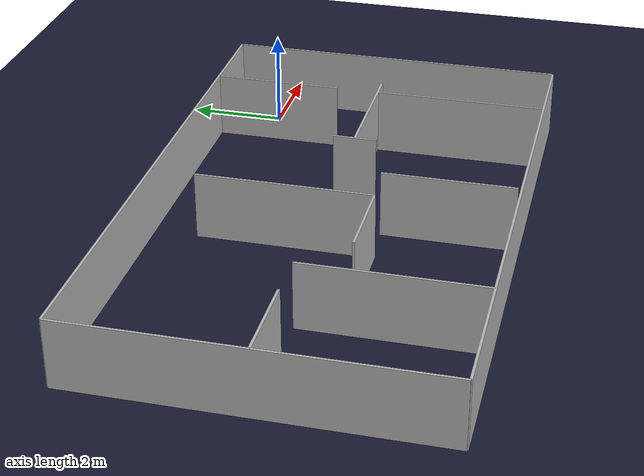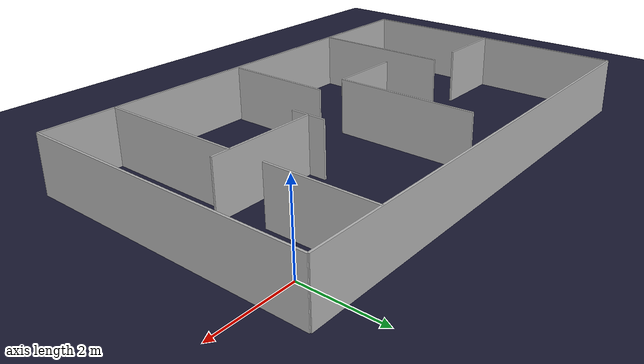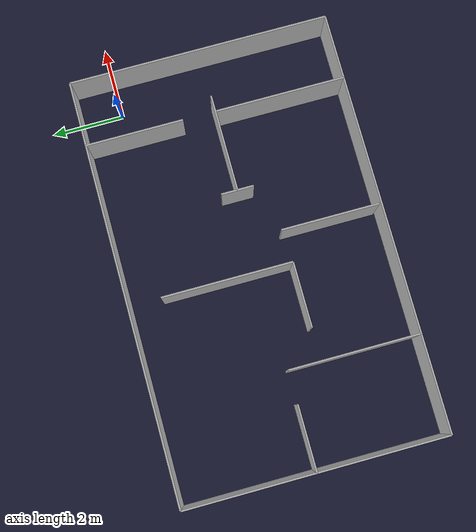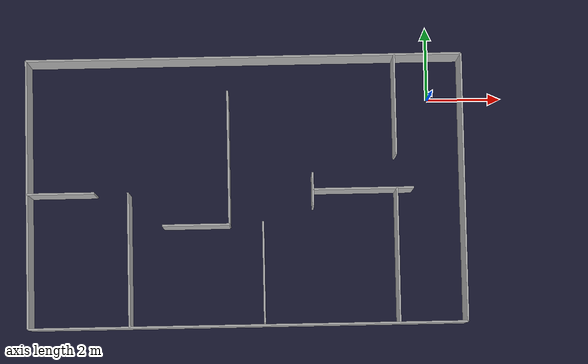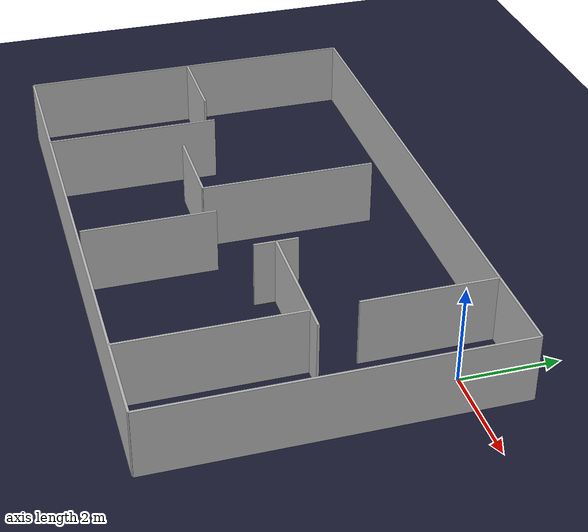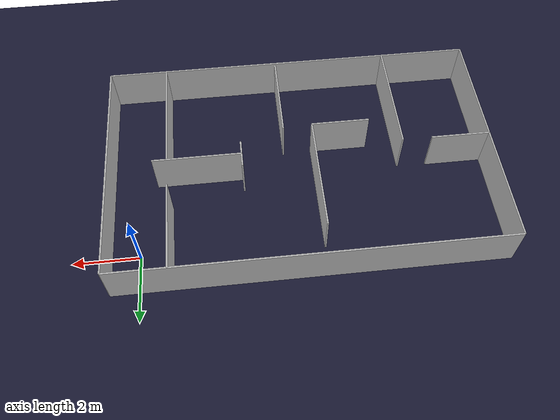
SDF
<sdf version="1.4">
 <world name="__default__">
  <light name="sun" type="directional">
   <pose>0 0 100 0 -0 0</pose>
   <diffuse>0.8 0.8 0.8 1</diffuse>
   <specular>0.2 0.2 0.2 1</specular>
   <attenuation>
    <range>1000</range>
    <constant>0.9</constant>
    <linear>0.01</linear>
    <quadratic>0.001</quadratic>
   </attenuation>
   <direction>-0.5 0.1 -0.9</direction>
  </light>
  <physics type="ode">
   <max_step_size>0.001</max_step_size>
   <real_time_factor>1</real_time_factor>
   <real_time_update_rate>1000</real_time_update_rate>
   <gravity>0 0 -9.8</gravity>
  </physics>
  <scene><ambient>0.4 0.4 0.4 1</ambient><background>0.7 0.7 0.7 1</background><shadows>1</shadows></scene>
  <spherical_coordinates>
   <surface_model>EARTH_WGS84</surface_model>
   <latitude_deg>0</latitude_deg>
   <longitude_deg>0</longitude_deg>
   <elevation>0</elevation>
   <heading_deg>0</heading_deg>
  </spherical_coordinates>
  <model name="asphalt_plane">
   <static>1</static>
   <link name="link">
    <collision name="collision"><geometry><plane><size>11.7 7.2</size></plane></geometry></collision>
    <visual name="visual">
     <cast_shadows>0</cast_shadows>
     <geometry><plane><size>11.7 7.2</size></plane></geometry>
     <material>
      <ambient>0.1 0.1 0.1 1</ambient>
      <diffuse>0.1 0.1 0.2 1</diffuse>
      <specular>0 0 0 0</specular>
      <emissive>0 0 0 1</emissive>
     </material>
    </visual>
    <velocity_decay><linear>0</linear><angular>0</angular></velocity_decay>
   </link>
   <pose>-5 -2.5 0 0 -0 0</pose>
  </model>
  <model name="grey_wall_0">
   <static>1</static>
   <link name="link">
    <pose>0 0 1.4 0 -0 0</pose>
    <collision name="collision"><geometry><box><size>11.7 0.05 1.4</size></box></geometry></collision>
    <visual name="visual">
     <cast_shadows>0</cast_shadows>
     <geometry><box><size>11.7 0.05 1.4</size></box></geometry>
    </visual>
    <velocity_decay><linear>0</linear><angular>0</angular></velocity_decay>
   </link>
   <pose>-5 -6.1 -0.7 0 -0 0</pose>
  </model>
  <model name="grey_wall_2">
   <static>1</static>
   <link name="link">
    <pose>0 0 1.4 0 -0 0</pose>
    <collision name="collision"><geometry><box><size>7.2 0.05 1.4</size></box></geometry></collision>
    <visual name="visual">
     <cast_shadows>0</cast_shadows>
     <geometry><box><size>7.2 0.05 1.4</size></box></geometry>
    </visual>
    <velocity_decay><linear>0</linear><angular>0</angular></velocity_decay>
   </link>
   <pose>-10.85 -2.5 -0.7 0 0 -1.57097</pose>
  </model>
  <model name="grey_wall_3">
   <static>1</static>
   <link name="link">
    <pose>0 0 0.7 0 -0 0</pose>
    <collision name="collision"><geometry><box><size>11.7 0.05 1.4</size></box></geometry></collision>
    <visual name="visual">
     <cast_shadows>0</cast_shadows>
     <geometry><box><size>11.7 0.05 1.4</size></box></geometry>
    </visual>
    <velocity_decay><linear>0</linear><angular>0</angular></velocity_decay>
   </link>
   <pose>-5 1.1 0 0 -0 0</pose>
  </model>
  <model name="grey_wall_4">
   <static>1</static>
   <link name="link">
    <pose>0 0 1.4 0 -0 0</pose>
    <collision name="collision"><geometry><box><size>7.2 0.05 1.4</size></box></geometry></collision>
    <visual name="visual">
     <cast_shadows>0</cast_shadows>
     <geometry><box><size>7.2 0.05 1.4</size></box></geometry>
    </visual>
    <velocity_decay><linear>0</linear><angular>0</angular></velocity_decay>
   </link>
   <pose>0.85 -2.5 -0.7 0 -0 1.57096</pose>
  </model>
  <model name="grey_wall_5">
   <static>1</static>
   <link name="link">
    <pose>0 0 1.4 0 -0 0</pose>
    <collision name="collision"><geometry><box><size>1.8 0.05 1.4</size></box></geometry></collision>
    <visual name="visual">
     <cast_shadows>0</cast_shadows>
     <geometry><box><size>1.8 0.05 1.4</size></box></geometry>
    </visual>
    <velocity_decay><linear>0</linear><angular>0</angular></velocity_decay>
   </link>
   <pose>-9.95 -2.5 -0.7 0 -0 0</pose>
  </model>
  <model name="grey_wall_6">
   <static>1</static>
   <link name="link">
    <pose>0 0 1.4 0 -0 0</pose>
    <collision name="collision"><geometry><box><size>3.6 0.05 1.4</size></box></geometry></collision>
    <visual name="visual">
     <cast_shadows>0</cast_shadows>
     <geometry><box><size>3.6 0.05 1.4</size></box></geometry>
    </visual>
    <velocity_decay><linear>0</linear><angular>0</angular></velocity_decay>
   </link>
   <pose>-8.15 -4.3 -0.7 0 0 -1.57079</pose>
  </model>
  <model name="grey_wall_7">
   <static>1</static>
   <link name="link">
    <pose>0 0 1.4 0 -0 0</pose>
    <collision name="collision"><geometry><box><size>1.8 0.05 1.4</size></box></geometry></collision>
    <visual name="visual">
     <cast_shadows>0</cast_shadows>
     <geometry><box><size>1.8 0.05 1.4</size></box></geometry>
    </visual>
    <velocity_decay><linear>0</linear><angular>0</angular></velocity_decay>
   </link>
   <pose>-6.35 -3.4 -0.7 0 -0 0</pose>
  </model>
  <model name="grey_wall_8">
   <static>1</static>
   <link name="link">
    <pose>0 0 1.4 0 -0 0</pose>
    <collision name="collision"><geometry><box><size>3.6 0.05 1.4</size></box></geometry></collision>
    <visual name="visual">
     <cast_shadows>0</cast_shadows>
     <geometry><box><size>3.6 0.05 1.4</size></box></geometry>
    </visual>
    <velocity_decay><linear>0</linear><angular>0</angular></velocity_decay>
   </link>
   <pose>-5.45 -1.6 -0.7 0 0 -1.57079</pose>
  </model>
  <model name="grey_wall_9">
   <static>1</static>
   <link name="link">
    <pose>0 0 1.4 0 -0 0</pose>
    <collision name="collision"><geometry><box><size>2.7 0.05 1.4</size></box></geometry></collision>
    <visual name="visual">
     <cast_shadows>0</cast_shadows>
     <geometry><box><size>2.7 0.05 1.4</size></box></geometry>
    </visual>
    <velocity_decay><linear>0</linear><angular>0</angular></velocity_decay>
   </link>
   <pose>-4.55 -4.6838 -0.7 0 0 -1.57079</pose>
  </model>
  <model name="grey_wall_10">
   <static>1</static>
   <link name="link">
    <pose>0 0 1.4 0 -0 0</pose>
    <collision name="collision"><geometry><box><size>3.6 0.05 1.4</size></box></geometry></collision>
    <visual name="visual">
     <cast_shadows>0</cast_shadows>
     <geometry><box><size>3.6 0.05 1.4</size></box></geometry>
    </visual>
    <velocity_decay><linear>0</linear><angular>0</angular></velocity_decay>
   </link>
   <pose>-0.95 -4.3 -0.7 0 0 -1.57097</pose>
  </model>
  <model name="grey_wall_11">
   <static>1</static>
   <link name="link">
    <pose>0 0 1.4 0 -0 0</pose>
    <collision name="collision"><geometry><box><size>2.7 0.05 1.4</size></box></geometry></collision>
    <visual name="visual">
     <cast_shadows>0</cast_shadows>
     <geometry><box><size>2.7 0.05 1.4</size></box></geometry>
    </visual>
    <velocity_decay><linear>0</linear><angular>0</angular></velocity_decay>
   </link>
   <pose>-1.85 -2.5 -0.7 0 -0 0</pose>
  </model>
  <model name="grey_wall_12">
   <static>1</static>
   <link name="link">
    <pose>0 0 1.4 0 -0 0</pose>
    <collision name="collision"><geometry><box><size>0.9 0.05 1.4</size></box></geometry></collision>
    <visual name="visual">
     <cast_shadows>0</cast_shadows>
     <geometry><box><size>0.9 0.05 1.4</size></box></geometry>
    </visual>
    <velocity_decay><linear>0</linear><angular>0</angular></velocity_decay>
   </link>
   <pose>-3.2 -2.5 -0.7 0 0 -1.57097</pose>
  </model>
  <model name="grey_wall_13">
   <static>1</static>
   <link name="link">
    <pose>0 0 1.4 0 -0 0</pose>
    <collision name="collision"><geometry><box><size>2.7 0.05 1.4</size></box></geometry></collision>
    <visual name="visual">
     <cast_shadows>0</cast_shadows>
     <geometry><box><size>2.7 0.05 1.4</size></box></geometry>
    </visual>
    <velocity_decay><linear>0</linear><angular>0</angular></velocity_decay>
   </link>
   <pose>-0.95 -0.25 -0.7 0 0 -1.57097</pose>
  </model>
 </world>
</sdf>
